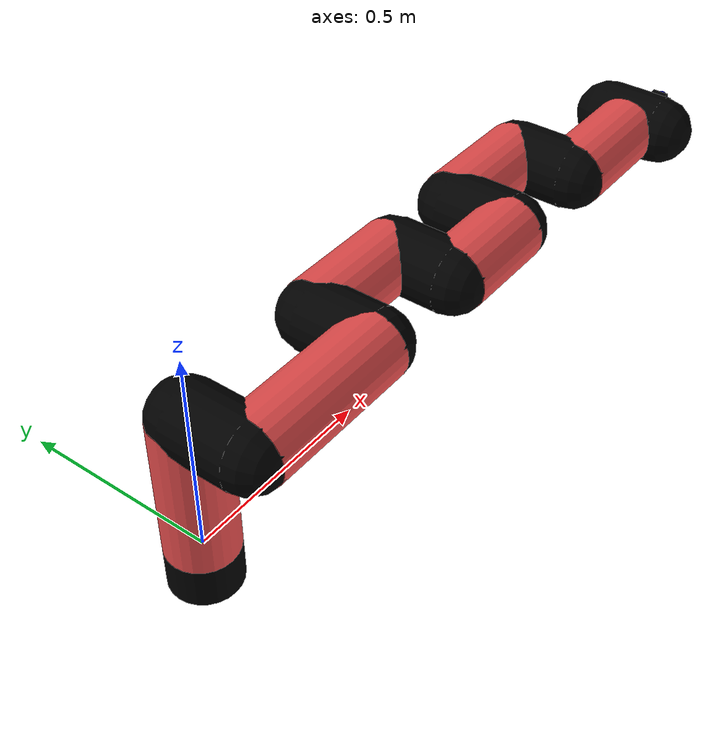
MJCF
<mujoco model="manipulator">
		<compiler angle="degree" coordinate="local" inertiafromgeom="auto" meshdir="meshes/"/>
		<option gravity="0 0 0" integrator="RK4" iterations="30" timestep="0.01"/>

		<default>
		<joint armature="1" limited="true" stiffness="10" damping="15" frictionloss="5.0"/>
		<geom conaffinity="1" condim="3" contype="1" friction=".5 .1 .1" margin="0.002"/>
		<motor ctrllimited="true"/>
		<position ctrllimited="true"/>
		</default>

		<asset>
		<texture builtin="gradient" height="100" rgb1="1.0 1.0 1.0" rgb2="1.0 1.0 1.0" type="skybox" width="100"/>
		<texture builtin="flat" height="32" name="arm_tex" rgb1="0.9 0.3 0.3" type="2d" width="32"/>
		<texture builtin="flat" height="32" name="gripper_tex" rgb1="0.0 0.0 0.0" type="cube" width="32"/>

		<material name="arm_mat" shininess="0.1" specular="0.1" texture="arm_tex"/>
		<material name="gripper_mat" shininess="1" specular="1" texture="gripper_tex"/>
		</asset>

		<worldbody>
		<light cutoff="45" diffuse=".8 .8 .8" dir="0 0.16 -1" directional="false" name="light" pos="0 -2.0 8.0" specular="0.3 0.3 0.3"/>

		<body name="base_link" pos="0 0 -0.1">
		<geom fromto="0 0 0 0 0 0.1" material="arm_mat" name="base_link" rgba="0.0 0.0 0.0 1" size="0.085" type="cylinder"/>
		</body>

		<body name="l1" pos="0 0 0">
<geom fromto="0 0 0 0 0 0.36" material="arm_mat" name="l1" rgba="0.9 0.3 0.3 1" size="0.085" type="cylinder"/>
<geom fromto="0 0 0.36 0 -0.16 0.36" material="arm_mat" name="l1_ex" rgba="0.0 0.0 0.0 1" size="0.085" type="capsule"/>
<joint axis="0 0 1" name="j1" pos="0 0 0" range="-90 90" damping="31.66" frictionloss="12.5"/>

<body name="l2" pos="0 -0.16 0.36">
<geom fromto="0 0 0 0.39 0 0" material="arm_mat" name="l2" rgba="0.9 0.3 0.3 1" size="0.085" type="cylinder"/>
<geom fromto="0.39 0 0 0.39 0.16 0" material="arm_mat" name="l2_ex" rgba="0.0 0.0 0.0 1" size="0.085" type="capsule"/>
<joint axis="0.0 1.0 0.0" name="j2" pos="0 0 0" range="-90 60" damping="32.49" frictionloss="8.76"/>

<body name="l3" pos="0.39 0.16 0">
<geom fromto="0 0 0 0.28 0 0" material="arm_mat" name="l3" rgba="0.9 0.3 0.3 1" size="0.085" type="cylinder"/>
<geom fromto="0.28 0 0 0.28 -0.16 0" material="arm_mat" name="l3_ex" rgba="0.0 0.0 0.0 1" size="0.085" type="capsule"/>
<joint axis="0.0 1.0 0.0" name="j3" pos="0 0 0" range="-30 60" damping="27.4" frictionloss="10.08"/>

<body name="l4" pos="0.28 -0.16 0">
<geom fromto="0 0 0 0.24 0 0" material="arm_mat" name="l4" rgba="0.9 0.3 0.3 1" size="0.085" type="cylinder"/>
<geom fromto="0.24 0 0 0.24 0.16 0" material="arm_mat" name="l4_ex" rgba="0.0 0.0 0.0 1" size="0.085" type="capsule"/>
<joint axis="0.0 1.0 0.0" name="j4" pos="0 0 0" range="-30 60" damping="35.9" frictionloss="9.24"/>

<body name="l5" pos="0.24 0.16 0">
<geom fromto="0 0 0 0.28 0 0" material="arm_mat" name="l5" rgba="0.9 0.3 0.3 1" size="0.085" type="cylinder"/>
<geom fromto="0.28 0 0 0.28 -0.16 0" material="arm_mat" name="l5_ex" rgba="0.0 0.0 0.0 1" size="0.085" type="capsule"/>
<joint axis="0.0 1.0 0.0" name="j5" pos="0 0 0" range="-30 60" damping="24.29" frictionloss="9.15"/>

<body name="l6" pos="0.28 -0.16 0">
<geom fromto="0 0 0 0.27 0 0" material="arm_mat" name="l6" rgba="0.9 0.3 0.3 1" size="0.085" type="cylinder"/>
<joint axis="0.0 1.0 0.0" name="j6" pos="0 0 0" range="-30 60" damping="32.52" frictionloss="10.89"/>

<body name="gripper" pos="0.27 0 0">
<geom fromto="0.05 -0.07 0 0.05 0.07 0" material="gripper_mat" name="gripper" rgba="0.0 0.0 0.0 1" size="0.085" type="capsule"/><joint axis="1 0 0" name="j7" pos="0 0 0" range="-90 90" damping="15" frictionloss="5.0"/><body name="finger" pos="0.1 0 0">
<geom fromto="0 0.0 0 0.1 0.0 0" material="gripper_mat" name="finger" rgba="0.0 0.0 0.0 1" size="0.020 0.06 0.06" type="box"/>
</body>
<site name="current" pos="0.2 0. 0.0" rgba="0. 0. 1.0 1" size="0.02" type="sphere"/>
</body>
</body>
</body>
</body>
</body>
</body>
</body>
</worldbody>
<actuator>
<motor ctrllimited="true" ctrlrange="-1.0 1.0" joint="j1" gear="77.26"/>
<motor ctrllimited="true" ctrlrange="-1.0 1.0" joint="j2" gear="75.68"/>
<motor ctrllimited="true" ctrlrange="-1.0 1.0" joint="j3" gear="83.95"/>
<motor ctrllimited="true" ctrlrange="-1.0 1.0" joint="j4" gear="89.49"/>
<motor ctrllimited="true" ctrlrange="-1.0 1.0" joint="j5" gear="69.01"/>
<motor ctrllimited="true" ctrlrange="-1.0 1.0" joint="j6" gear="67.66"/>
<motor ctrllimited="true" ctrlrange="-1.0 1.0" joint="j7" gear="80"/>
</actuator>
</mujoco>
